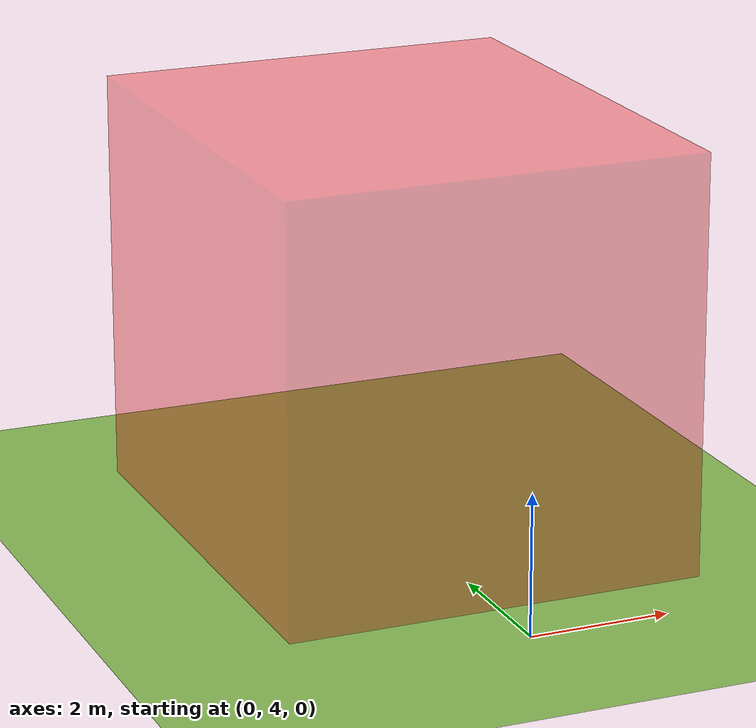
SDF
<?xml version="1.0" encoding="UTF-8"?>
<sdf version="1.9">
  <world name="nfz_restricted_zone">
    <physics type="ode">
      <max_step_size>0.004</max_step_size>
      <real_time_factor>1.0</real_time_factor>
      <real_time_update_rate>250</real_time_update_rate>
    </physics>
    <plugin name="gz::sim::systems::Physics" filename="gz-sim-physics-system"/>
    <plugin name="gz::sim::systems::UserCommands" filename="gz-sim-user-commands-system"/>
    <plugin name="gz::sim::systems::SceneBroadcaster" filename="gz-sim-scene-broadcaster-system"/>
    <plugin name="gz::sim::systems::Contact" filename="gz-sim-contact-system"/>
    <plugin name="gz::sim::systems::Imu" filename="gz-sim-imu-system"/>
    <plugin name="gz::sim::systems::AirPressure" filename="gz-sim-air-pressure-system"/>
    <plugin name="gz::sim::systems::ApplyLinkWrench" filename="gz-sim-apply-link-wrench-system"/>
    <plugin name="gz::sim::systems::NavSat" filename="gz-sim-navsat-system"/>
    <plugin name="gz::sim::systems::Sensors" filename="gz-sim-sensors-system">
      <render_engine>ogre2</render_engine>
    </plugin>
    <gui fullscreen="false">
      <plugin filename="MinimalScene" name="3D View">
        <gz-gui>
          <title>3D View</title>
          <property type="bool" key="showTitleBar">false</property>
          <property type="string" key="state">docked</property>
        </gz-gui>
        <engine>ogre2</engine>
        <scene>scene</scene>
        <ambient_light>0.4 0.4 0.4</ambient_light>
        <background_color>0.8 0.8 0.8</background_color>
        <camera_pose>0 -14 12 0 0.62 1.5708</camera_pose>
        <camera_clip>
          <near>0.25</near>
          <far>25000</far>
        </camera_clip>
      </plugin>
      <plugin filename="EntityContextMenuPlugin" name="Entity context menu">
        <gz-gui>
          <property key="state" type="string">floating</property>
          <property key="width" type="double">5</property>
          <property key="height" type="double">5</property>
          <property key="showTitleBar" type="bool">false</property>
        </gz-gui>
      </plugin>
      <plugin filename="GzSceneManager" name="Scene Manager">
        <gz-gui>
          <property key="resizable" type="bool">false</property>
          <property key="width" type="double">5</property>
          <property key="height" type="double">5</property>
          <property key="state" type="string">floating</property>
          <property key="showTitleBar" type="bool">false</property>
        </gz-gui>
      </plugin>
      <plugin filename="InteractiveViewControl" name="Interactive view control">
        <gz-gui>
          <property key="resizable" type="bool">false</property>
          <property key="width" type="double">5</property>
          <property key="height" type="double">5</property>
          <property key="state" type="string">floating</property>
          <property key="showTitleBar" type="bool">false</property>
        </gz-gui>
      </plugin>
      <plugin filename="CameraTracking" name="Camera Tracking">
        <gz-gui>
          <property key="resizable" type="bool">false</property>
          <property key="width" type="double">5</property>
          <property key="height" type="double">5</property>
          <property key="state" type="string">floating</property>
          <property key="showTitleBar" type="bool">false</property>
        </gz-gui>
      </plugin>
      <plugin filename="MarkerManager" name="Marker manager">
        <gz-gui>
          <property key="resizable" type="bool">false</property>
          <property key="width" type="double">5</property>
          <property key="height" type="double">5</property>
          <property key="state" type="string">floating</property>
          <property key="showTitleBar" type="bool">false</property>
        </gz-gui>
      </plugin>
      <plugin filename="SelectEntities" name="Select Entities">
        <gz-gui>
          <property key="resizable" type="bool">false</property>
          <property key="width" type="double">5</property>
          <property key="height" type="double">5</property>
          <property key="state" type="string">floating</property>
          <property key="showTitleBar" type="bool">false</property>
        </gz-gui>
      </plugin>
      <plugin filename="VisualizationCapabilities" name="Visualization Capabilities">
        <gz-gui>
          <property key="resizable" type="bool">false</property>
          <property key="width" type="double">5</property>
          <property key="height" type="double">5</property>
          <property key="state" type="string">floating</property>
          <property key="showTitleBar" type="bool">false</property>
        </gz-gui>
      </plugin>
      <plugin filename="Spawn" name="Spawn Entities">
        <gz-gui>
          <property key="resizable" type="bool">false</property>
          <property key="width" type="double">5</property>
          <property key="height" type="double">5</property>
          <property key="state" type="string">floating</property>
          <property key="showTitleBar" type="bool">false</property>
        </gz-gui>
      </plugin>
      <plugin name="World control" filename="WorldControl">
        <gz-gui>
          <title>World control</title>
          <property type="bool" key="showTitleBar">0</property>
          <property type="bool" key="resizable">0</property>
          <property type="double" key="height">72</property>
          <property type="double" key="width">121</property>
          <property type="double" key="z">1</property>
          <property type="string" key="state">floating</property>
          <anchors target="3D View">
            <line own="left" target="left"/>
            <line own="bottom" target="bottom"/>
          </anchors>
        </gz-gui>
        <play_pause>1</play_pause>
        <step>1</step>
        <start_paused>0</start_paused>
      </plugin>
      <plugin name="World stats" filename="WorldStats">
        <gz-gui>
          <title>World stats</title>
          <property type="bool" key="showTitleBar">0</property>
          <property type="bool" key="resizable">0</property>
          <property type="double" key="height">110</property>
          <property type="double" key="width">290</property>
          <property type="double" key="z">1</property>
          <property type="string" key="state">floating</property>
          <anchors target="3D View">
            <line own="right" target="right"/>
            <line own="bottom" target="bottom"/>
          </anchors>
        </gz-gui>
        <sim_time>1</sim_time>
        <real_time>1</real_time>
        <real_time_factor>1</real_time_factor>
        <iterations>1</iterations>
      </plugin>
    </gui>
    <gravity>0 0 -9.8</gravity>
    <magnetic_field>6e-06 2.3e-05 -4.2e-05</magnetic_field>
    <atmosphere type="adiabatic"/>
    <scene>
      <grid>true</grid>
      <ambient>0.6 0.6 0.6 1</ambient>
      <background>0.7 0.8 0.9 1</background>
      <shadows>true</shadows>
    </scene>
    <model name="ground_plane">
      <static>true</static>
      <link name="link">
        <collision name="collision">
          <geometry>
            <plane>
              <normal>0 0 1</normal>
              <size>1 1</size>
            </plane>
          </geometry>
          <surface>
            <friction>
              <ode>
                <mu>0.6</mu>
                <mu2>0.6</mu2>
              </ode>
            </friction>
            <bounce/>
            <contact>
              <collide_bitmask>65535</collide_bitmask>
              <ode>
                <min_depth>0.005</min_depth>
                <kp>1e8</kp>
              </ode>
            </contact>
          </surface>
        </collision>
        <visual name="visual">
          <cast_shadows>false</cast_shadows>
          <geometry>
            <plane>
              <normal>0 0 1</normal>
              <size>400 400</size>
            </plane>
          </geometry>
          <material>
            <diffuse>0.55 0.75 0.35 1</diffuse>
            <specular>0 0 0 0</specular>
            <emissive>0 0 0 0</emissive>
          </material>
        </visual>
        <pose>0 0 0 0 -0 0</pose>
        <inertial>
          <pose>0 0 0 0 -0 0</pose>
          <mass>1</mass>
          <inertia>
            <ixx>1</ixx>
            <ixy>0</ixy>
            <ixz>0</ixz>
            <iyy>1</iyy>
            <iyz>0</iyz>
            <izz>1</izz>
          </inertia>
        </inertial>
        <enable_wind>false</enable_wind>
      </link>
      <pose>0 0 0 0 -0 0</pose>
      <self_collide>false</self_collide>
    </model>

    <!-- ===================== No-Fly-Zone marker ===================== -->
    <!-- Transparent red prism. Static, no collision, so the drone flies
         THROUGH it (the NFZ is a belief/rule, not a physical wall). -->
    <model name="no_fly_zone">
      <static>true</static>
      <pose>0 8.5 3 0 0 0</pose>
      <link name="link">
        <visual name="visual">
          <cast_shadows>false</cast_shadows>
          <transparency>0.6</transparency>
          <geometry>
            <box>
              <size>6 7 6</size>
            </box>
          </geometry>
          <material>
            <ambient>1 0 0 0.35</ambient>
            <diffuse>1 0 0 0.35</diffuse>
            <specular>0.1 0 0 0.35</specular>
            <emissive>0.4 0 0 0.2</emissive>
          </material>
        </visual>
      </link>
    </model>

    <light name="sunUTC" type="directional">
      <pose>0 0 500 0 -0 0</pose>
      <cast_shadows>true</cast_shadows>
      <intensity>1</intensity>
      <direction>0.001 0.625 -0.78</direction>
      <diffuse>0.904 0.904 0.904 1</diffuse>
      <specular>0.271 0.271 0.271 1</specular>
      <attenuation>
        <range>2000</range>
        <linear>0</linear>
        <constant>1</constant>
        <quadratic>0</quadratic>
      </attenuation>
      <spot>
        <inner_angle>0</inner_angle>
        <outer_angle>0</outer_angle>
        <falloff>0</falloff>
      </spot>
    </light>
    <spherical_coordinates>
      <surface_model>EARTH_WGS84</surface_model>
      <world_frame_orientation>ENU</world_frame_orientation>
      <latitude_deg>47.397971057728974</latitude_deg>
      <longitude_deg>8.546163739800146</longitude_deg>
      <elevation>0</elevation>
    </spherical_coordinates>
  </world>
</sdf>
